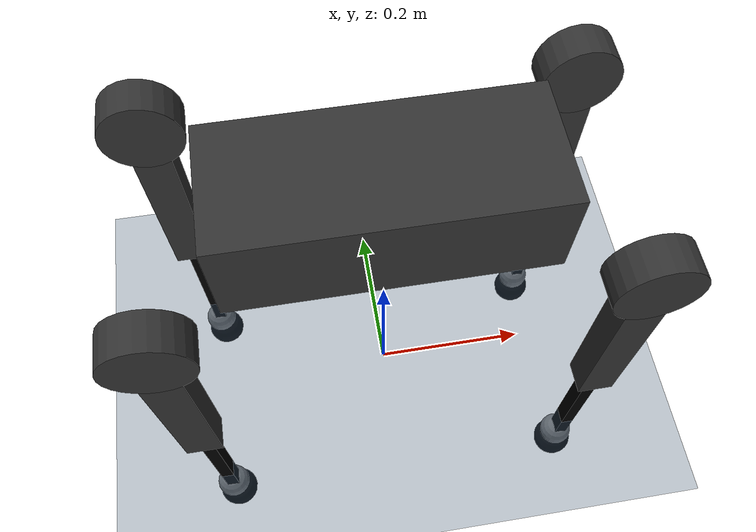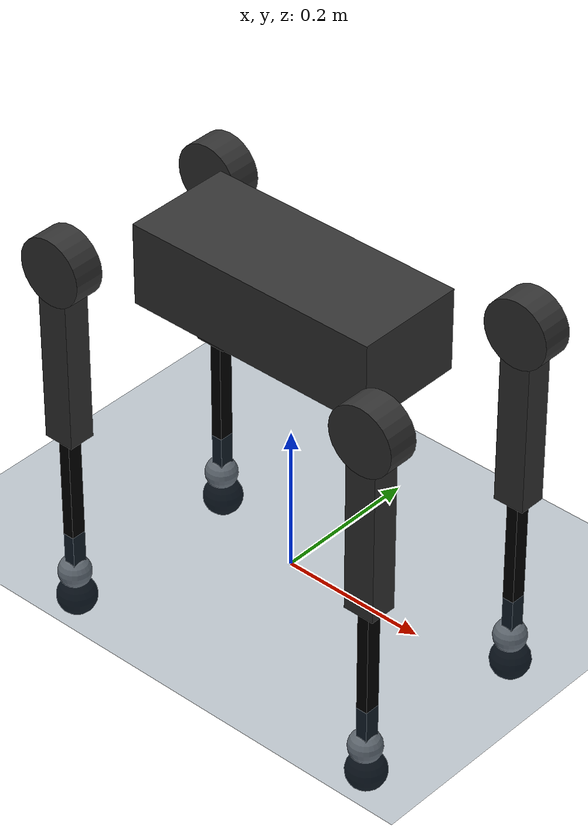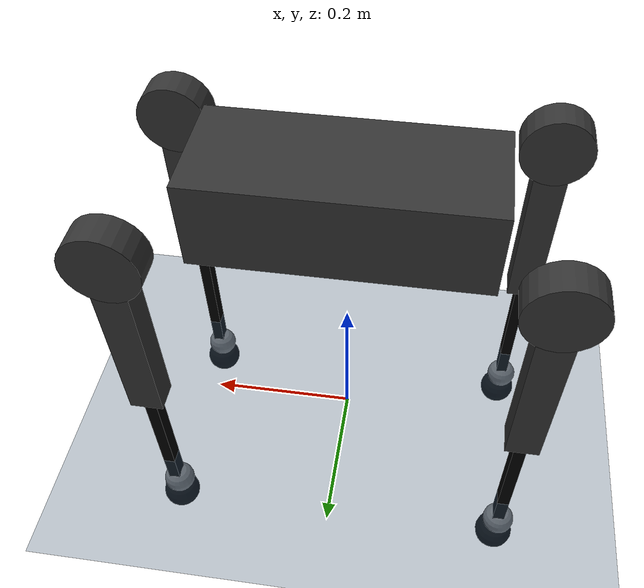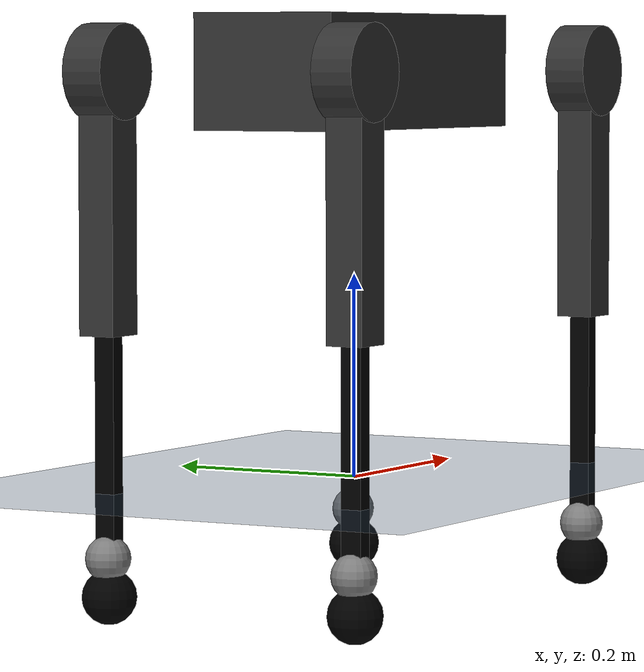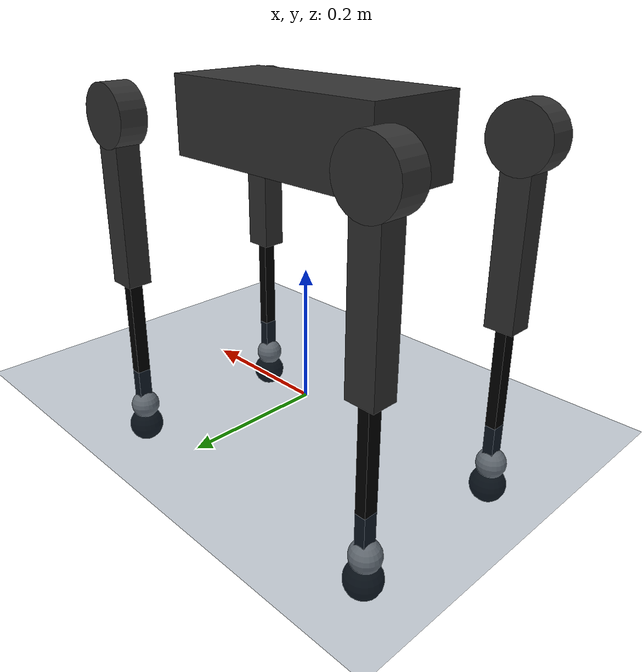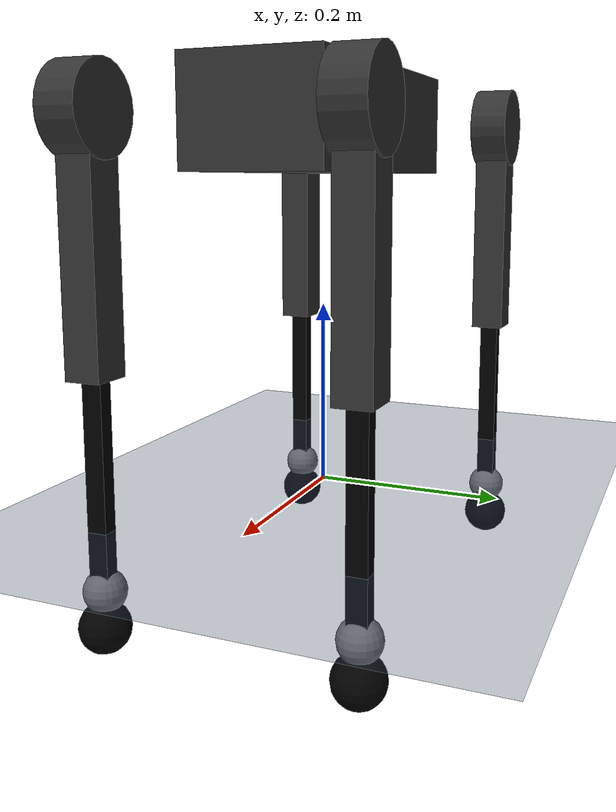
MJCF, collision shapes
<mujoco model="go2 scene">

  <include file="aliengo.xml"/>

  <statistic center="0 0 0.1" extent="0.8"/>

  <visual>
    <headlight diffuse="0.6 0.6 0.6" ambient="0.3 0.3 0.3" specular="0 0 0"/>
    <rgba haze="0.15 0.25 0.35 1"/>
    <global azimuth="-130" elevation="-20"/>
  </visual>

  <asset>
    <texture type="skybox" builtin="gradient" rgb1="0.3 0.5 0.7" rgb2="0 0 0" width="512" height="3072"/>
    <texture type="2d" name="groundplane" builtin="checker" mark="edge" rgb1="0.2 0.3 0.4" rgb2="0.1 0.2 0.3"
      markrgb="0.8 0.8 0.8" width="300" height="300"/>
    <material name="groundplane" texture="groundplane" texuniform="true" texrepeat="5 5" reflectance="0.2"/>
  </asset>

  <worldbody>
    <light pos="0 0 1.5" dir="0 0 -1" directional="true"/>
    <geom name="floor" size="0 0 0.05" type="plane" material="groundplane"/>
  </worldbody>
</mujoco>

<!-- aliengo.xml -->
<mujoco model="aliengo_description">
    <compiler angle="radian" meshdir="../meshes" autolimits="true"/>
    <option cone="elliptic" impratio="100" integrator="implicitfast" timestep="0.001"/>

    <default>
      <default class="aliengo">

        <geom friction="0.6" margin="0.001" condim="1"/>
        <joint axis="0 1 0" damping="0.1" armature="0.01" frictionloss="0.01"/>

        <motor ctrlrange="-44.4 44.4" ctrllimited="true"/>

        <default class="visual">
          <geom type="mesh" contype="0" conaffinity="0" group="2"/>
        </default>

        <default class="collision">
          <geom group="3"/>
          <default class="foot">
            <geom size="0.022" pos="-0.002 0 -0.213" priority="1" solimp="0.015 1 0.031" condim="6"
              friction="0.7 0.02 0.01"/>
          </default>
        </default>

      </default>
    </default>

    <asset>
        <mesh name="trunk" file="trunk.stl" />
        <mesh name="hip" file="hip.stl" />
        <mesh name="thigh_mirror" file="thigh_mirror.stl" />
        <mesh name="calf" file="calf.stl" />
        <mesh name="thigh" file="thigh.stl" />
    </asset>

    <visual>
        <rgba com="0.502 1.0 0 0.5" contactforce="0.98 0.4 0.4 0.7" contactpoint="1.0 1.0 0.6 0.4"/>
        <scale com="0.2" forcewidth="0.035" contactwidth="0.10" contactheight="0.04"/>
    </visual>

    <worldbody>
        <body name="trunk" pos="0 0 0.4" childclass="aliengo">
            <inertial pos="0.00846406 0.00404455 -0.000762916" quat="-3.12625e-05 0.708321 0.00247254 0.705886" mass="9.042" diaginertia="0.174706 0.161175 0.033357" />
            <freejoint/>
            <geom type="mesh" contype="0" conaffinity="0" group="1" rgba="0.2 0.2 0.2 1" mesh="trunk" class="visual"/>
            <geom size="0.18 0.075 0.056" type="box" class="collision" rgba="0.2 0.2 0.2 0"/>
            <geom size="0.0005 0.0005 0.0005" type="box" class="collision" contype="0" conaffinity="0" group="1" rgba="0.8 0 0 0"/>
            <geom size="0.0005 0.0005 0.0005" type="box" class="collision" rgba="0.8 0 0 0"/>
            <site name="imu" pos="0 0 0"/>

            <body name="FR_hip" pos="0.2399 -0.051 0">
                <inertial pos="-0.022191 -0.015144 -1.5e-05" quat="0.0135493 0.706835 -0.0117635 0.707151" mass="1.993" diaginertia="0.00558695 0.00491009 0.00290132" />
                <joint name="FR_hip_joint" pos="0 0 0" axis="1 0 0" limited="true" range="-1.22173 1.22173" />
                <geom quat="0 1 0 0" type="mesh" contype="0" conaffinity="0" group="1" rgba="0.2 0.2 0.2 1" mesh="hip" class="visual" />
                <geom size="0.046 0.0209" pos="0 -0.083 0" quat="0.707107 0.707107 0 0" type="cylinder" class="collision" rgba="0.2 0.2 0.2 0" />
                <body name="FR_thigh" pos="0 -0.083 0">
                    <inertial pos="-0.005607 0.003877 -0.048199" quat="0.694544 -0.0335669 -0.031246 0.717987" mass="0.639" diaginertia="0.0058474 0.00571186 0.000324584" />
                    <joint name="FR_thigh_joint" pos="0 0 0" axis="0 1 0" />
                    <geom type="mesh" contype="0" conaffinity="0" group="1" rgba="0.2 0.2 0.2 1" mesh="thigh_mirror" class="visual" />
                    <geom size="0.125 0.0187 0.0215" pos="0 0 -0.125" quat="0.707107 0 0.707107 0" type="box" class="collision" rgba="0.2 0.2 0.2 0" />
                    <body name="FR_calf" pos="0 0 -0.25">
                        <inertial pos="0.00215606 4.88427e-05 -0.166671" quat="0.707462 0.00517582 0.00535172 0.706712" mass="0.267" diaginertia="0.00690975 0.00689712 5.4885e-05" />
                        <joint name="FR_calf_joint" pos="0 0 0" axis="0 1 0" limited="true" range="-2.77507 -0.645772" />
                        <geom type="mesh" contype="0" conaffinity="0" group="1" rgba="0 0 0 1" mesh="calf" class="visual" />
                        <geom size="0.125 0.0104 0.008" pos="0 0 -0.125" quat="0.707107 0 0.707107 0" type="box" class="collision" rgba="0 0 0 0" />
                        <geom size="0.0165" pos="0 0 -0.25" contype="0" conaffinity="0" group="1" rgba="0 0 0 1" />
                        <geom size="0.0265" pos="0 0 -0.25" rgba="0 0 0 1" />
                        <geom name="FR_foot" class="foot"/>
                    </body>
                </body>
            </body>
            <body name="FL_hip" pos="0.2399 0.051 0">
                <inertial pos="-0.022191 0.015144 -1.5e-05" quat="-0.0135493 0.706835 0.0117635 0.707151" mass="1.993" diaginertia="0.00558695 0.00491009 0.00290132" />
                <joint name="FL_hip_joint" pos="0 0 0" axis="1 0 0" limited="true" range="-1.22173 1.22173" />
                <geom type="mesh" contype="0" conaffinity="0" group="1" rgba="0.2 0.2 0.2 1" mesh="hip" class="visual" />
                <geom size="0.046 0.0209" pos="0 0.083 0" quat="0.707107 0.707107 0 0" type="cylinder" class="collision" rgba="0.2 0.2 0.2 0" />
                <body name="FL_thigh" pos="0 0.083 0">
                    <inertial pos="-0.005607 -0.003877 -0.048199" quat="0.717987 -0.031246 -0.0335669 0.694544" mass="0.639" diaginertia="0.0058474 0.00571186 0.000324584" />
                    <joint name="FL_thigh_joint" pos="0 0 0" axis="0 1 0" />
                    <geom type="mesh" contype="0" conaffinity="0" group="1" rgba="0.2 0.2 0.2 1" mesh="thigh" class="visual" />
                    <geom size="0.125 0.0187 0.0215" pos="0 0 -0.125" quat="0.707107 0 0.707107 0" type="box" class="collision" rgba="0.2 0.2 0.2 0" />
                    <body name="FL_calf" pos="0 0 -0.25">
                        <inertial pos="0.00215606 4.88427e-05 -0.166671" quat="0.707462 0.00517582 0.00535172 0.706712" mass="0.267" diaginertia="0.00690975 0.00689712 5.4885e-05" />
                        <joint name="FL_calf_joint" pos="0 0 0" axis="0 1 0" limited="true" range="-2.77507 -0.645772" />
                        <geom type="mesh" contype="0" conaffinity="0" group="1" rgba="0 0 0 1" mesh="calf" class="visual" />
                        <geom size="0.125 0.0104 0.008" pos="0 0 -0.125" quat="0.707107 0 0.707107 0" type="box" class="collision" rgba="0 0 0 0" />
                        <geom size="0.0165" pos="0 0 -0.25" contype="0" conaffinity="0" group="1" rgba="0 0 0 1" />
                        <geom size="0.0265" pos="0 0 -0.25" rgba="0 0 0 1" />
                        <geom name="FL_foot" class="foot"/>
                    </body>
                </body>
            </body>
            <body name="RR_hip" pos="-0.2399 -0.051 0">
                <inertial pos="0.022191 -0.015144 -1.5e-05" quat="-0.0117635 0.707151 0.0135493 0.706835" mass="1.993" diaginertia="0.00558695 0.00491009 0.00290132" />
                <joint name="RR_hip_joint" pos="0 0 0" axis="1 0 0" limited="true" range="-1.22173 1.22173" />
                <geom quat="0 0 0 -1" type="mesh" contype="0" conaffinity="0" group="1" rgba="0.2 0.2 0.2 1" mesh="hip" class="visual" />
                <geom size="0.046 0.0209" pos="0 -0.083 0" quat="0.707107 0.707107 0 0" type="cylinder" class="collision" rgba="0.2 0.2 0.2 0" />
                <body name="RR_thigh" pos="0 -0.083 0">
                    <inertial pos="-0.005607 0.003877 -0.048199" quat="0.694544 -0.0335669 -0.031246 0.717987" mass="0.639" diaginertia="0.0058474 0.00571186 0.000324584" />
                    <joint name="RR_thigh_joint" pos="0 0 0" axis="0 1 0" />
                    <geom type="mesh" contype="0" conaffinity="0" group="1" rgba="0.2 0.2 0.2 1" mesh="thigh_mirror" class="visual" />
                    <geom size="0.125 0.0187 0.0215" pos="0 0 -0.125" quat="0.707107 0 0.707107 0" type="box" class="collision" rgba="0.2 0.2 0.2 0" />
                    <body name="RR_calf" pos="0 0 -0.25">
                        <inertial pos="0.00215606 4.88427e-05 -0.166671" quat="0.707462 0.00517582 0.00535172 0.706712" mass="0.267" diaginertia="0.00690975 0.00689712 5.4885e-05" />
                        <joint name="RR_calf_joint" pos="0 0 0" axis="0 1 0" limited="true" range="-2.77507 -0.645772" />
                        <geom type="mesh" contype="0" conaffinity="0" group="1" rgba="0 0 0 1" mesh="calf" class="visual" />
                        <geom size="0.125 0.0104 0.008" pos="0 0 -0.125" quat="0.707107 0 0.707107 0" type="box" class="collision" rgba="0 0 0 0" />
                        <geom size="0.0165" pos="0 0 -0.25" contype="0" conaffinity="0" group="1" rgba="0 0 0 1" />
                        <geom size="0.0265" pos="0 0 -0.25" rgba="0 0 0 1" />
                        <geom name="RR_foot" class="foot"/>
                    </body>
                </body>
            </body>
            <body name="RL_hip" pos="-0.2399 0.051 0">
                <inertial pos="0.022191 0.015144 -1.5e-05" quat="0.0117635 0.707151 -0.0135493 0.706835" mass="1.993" diaginertia="0.00558695 0.00491009 0.00290132" />
                <joint name="RL_hip_joint" pos="0 0 0" axis="1 0 0" limited="true" range="-1.22173 1.22173" />
                <geom quat="0 0 1 0" type="mesh" contype="0" conaffinity="0" group="1" rgba="0.2 0.2 0.2 1" mesh="hip" class="visual" />
                <geom size="0.046 0.0209" pos="0 0.083 0" quat="0.707107 0.707107 0 0" type="cylinder" class="collision" rgba="0.2 0.2 0.2 0" />
                <body name="RL_thigh" pos="0 0.083 0">
                    <inertial pos="-0.005607 -0.003877 -0.048199" quat="0.717987 -0.031246 -0.0335669 0.694544" mass="0.639" diaginertia="0.0058474 0.00571186 0.000324584" />
                    <joint name="RL_thigh_joint" pos="0 0 0" axis="0 1 0" />
                    <geom type="mesh" contype="0" conaffinity="0" group="1" rgba="0.2 0.2 0.2 1" mesh="thigh" class="visual" />
                    <geom size="0.125 0.0187 0.0215" pos="0 0 -0.125" quat="0.707107 0 0.707107 0" type="box" class="collision" rgba="0.2 0.2 0.2 0" />
                    <body name="RL_calf" pos="0 0 -0.25">
                        <inertial pos="0.00215606 4.88427e-05 -0.166671" quat="0.707462 0.00517582 0.00535172 0.706712" mass="0.267" diaginertia="0.00690975 0.00689712 5.4885e-05" />
                        <joint name="RL_calf_joint" pos="0 0 0" axis="0 1 0" limited="true" range="-2.77507 -0.645772" />
                        <geom type="mesh" contype="0" conaffinity="0" group="1" rgba="0 0 0 1" mesh="calf" class="visual" />
                        <geom size="0.125 0.0104 0.008" pos="0 0 -0.125" quat="0.707107 0 0.707107 0" type="box" class="collision" rgba="0 0 0 0" />
                        <geom size="0.0165" pos="0 0 -0.25" contype="0" conaffinity="0" group="1" rgba="0 0 0 1" />
                        <geom size="0.0265" pos="0 0 -0.25" rgba="0 0 0 1" />
                        <geom name="RL_foot" class="foot"/>
                    </body>
                </body>
            </body>
        </body>
    </worldbody>

    <actuator>

        <motor name="FR_hip"       gear="1" joint="FR_hip_joint"/>
        <motor name="FR_thigh"       gear="1" joint="FR_thigh_joint"/>
        <motor name="FR_calf"       gear="1" joint="FR_calf_joint"/>
        <motor name="FL_hip"     gear="1" joint="FL_hip_joint"/>
        <motor name="FL_thigh"     gear="1" joint="FL_thigh_joint"/>
        <motor name="FL_calf"     gear="1" joint="FL_calf_joint"/>
        <motor name="RR_hip"      gear="1" joint="RR_hip_joint"/>
        <motor name="RR_thigh"   gear="1" joint="RR_thigh_joint"/>
        <motor name="RR_calf"   gear="1" joint="RR_calf_joint" />
        <motor name="RL_hip"      gear="1" joint="RL_hip_joint"/>
        <motor name="RL_thigh"      gear="1" joint="RL_thigh_joint"/>
        <motor name="RL_calf"      gear="1" joint="RL_calf_joint"/>
    </actuator>

    <sensor>

        <jointpos name="FR_hip_pos"     joint="FR_hip_joint"/>
        <jointpos name="FR_thigh_pos"   joint="FR_thigh_joint"/>
        <jointpos name="FR_calf_pos"    joint="FR_calf_joint"/>
        <jointpos name="FL_hip_pos"     joint="FL_hip_joint"/>
        <jointpos name="FL_thigh_pos"   joint="FL_thigh_joint"/>
        <jointpos name="FL_calf_pos"    joint="FL_calf_joint"/>
        <jointpos name="RR_hip_pos"     joint="RR_hip_joint"/>
        <jointpos name="RR_thigh_pos"   joint="RR_thigh_joint"/>
        <jointpos name="RR_calf_pos"    joint="RR_calf_joint" />
        <jointpos name="RL_hip_pos"     joint="RL_hip_joint"/>
        <jointpos name="RL_thigh_pos"   joint="RL_thigh_joint"/>
        <jointpos name="RL_calf_pos"    joint="RL_calf_joint"/>

        <jointvel name="FR_hip_vel"     joint="FR_hip_joint"/>
        <jointvel name="FR_thigh_vel"   joint="FR_thigh_joint"/>
        <jointvel name="FR_calf_vel"    joint="FR_calf_joint"/>
        <jointvel name="FL_hip_vel"     joint="FL_hip_joint"/>
        <jointvel name="FL_thigh_vel"   joint="FL_thigh_joint"/>
        <jointvel name="FL_calf_vel"    joint="FL_calf_joint"/>
        <jointvel name="RR_hip_vel"     joint="RR_hip_joint"/>
        <jointvel name="RR_thigh_vel"   joint="RR_thigh_joint"/>
        <jointvel name="RR_calf_vel"    joint="RR_calf_joint" />
        <jointvel name="RL_hip_vel"     joint="RL_hip_joint"/>
        <jointvel name="RL_thigh_vel"   joint="RL_thigh_joint"/>
        <jointvel name="RL_calf_vel"    joint="RL_calf_joint"/>

        <accelerometer name="Body_Acc" site="imu"/>

        <gyro name="Body_Gyro" site="imu"/>

        <framepos name="Body_Pos" objtype="site" objname="imu"/>

        <framequat name="Body_Quat" objtype="site" objname="imu"/>
    </sensor>

    <keyframe>
      <key name="home" qpos="0 0 0.4 1 0 0 0 0 0.9 -1.8 0 0.9 -1.8 0 0.9 -1.8 0 0.9 -1.8"
        ctrl="0 0.9 -1.8 0 0.9 -1.8 0 0.9 -1.8 0 0.9 -1.8"/>
    </keyframe>

</mujoco>
